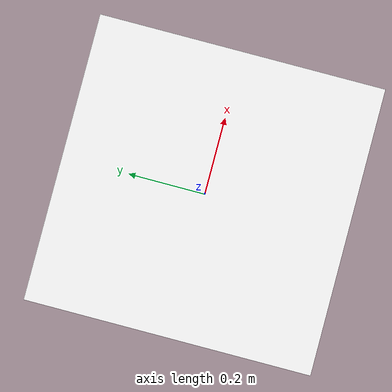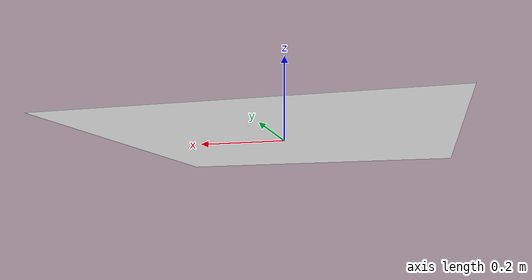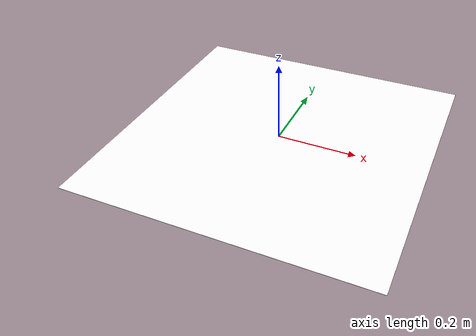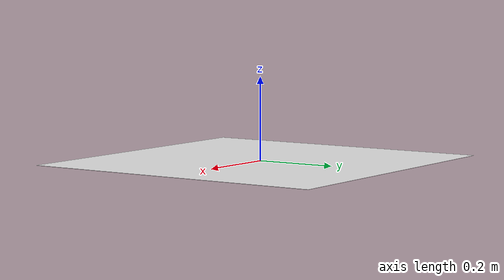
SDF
<?xml version="1.0"?>
<sdf version='1.10'>
  <model name="aruco_marker">
    <static>true</static>
    <pose>0 0 0.001 0 0 0</pose>
    <link name='marker_link'>
      <visual name='base_visual'>
        <geometry>
          <plane>
            <normal>0 0 1</normal>
            <size>0.75 0.75</size>
          </plane>
        </geometry>
        <material>
          <diffuse>1 1 1 1</diffuse>
          <specular>0.4 0.4 0.4 1</specular>
          <pbr>
            <metal>
              <albedo_map>model://aruco/materials/aruco_marker.png</albedo_map>
            </metal>
          </pbr>
        </material>
      </visual>
    </link>
  </model>
</sdf>
